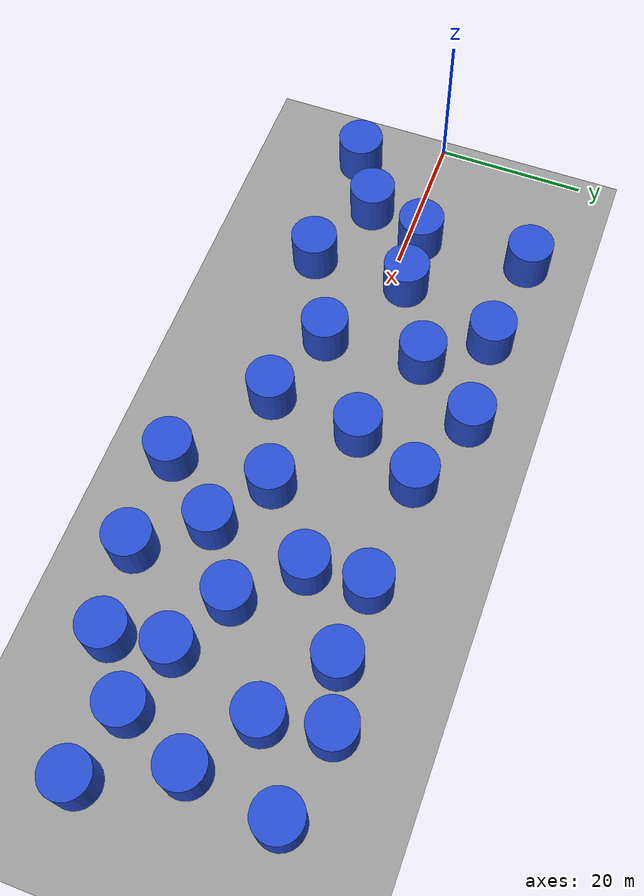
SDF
<sdf version="1.7">
 <world name="default">
  <plugin name="disable_physics" filename="libdisable_physics.so"/>
  <plugin name="gazebo_ros_state" filename="libgazebo_ros_state.so">
   <ros>
    <namespace>/plug</namespace>
    <argument>model_states:=model_states_plug</argument>
    <argument>link_states:=link_states_plug</argument>
   </ros>
   <update_rate>100.0</update_rate>
  </plugin>
  <light name="sun" type="directional">
   <pose>0 0 10 0 -0 0</pose>
   <diffuse>0.8 0.8 0.8 1</diffuse>
   <specular>0.2 0.2 0.2 1</specular>
   <attenuation>
    <range>1000</range>
    <constant>0.9</constant>
    <linear>0.01</linear>
    <quadratic>0.001</quadratic>
   </attenuation>
   <direction>-0.5 0.1 -0.9</direction>
   <spot><inner_angle>0</inner_angle><outer_angle>0</outer_angle><falloff>0</falloff></spot>
  </light>
  <gravity>0 0 -9.8</gravity>
  <magnetic_field>6e-06 2.3e-05 -4.2e-05</magnetic_field>
  <atmosphere type="adiabatic"/>
  <physics type="ode">
   <max_step_size>0.001</max_step_size>
   <real_time_factor>1</real_time_factor>
   <real_time_update_rate>1000</real_time_update_rate>
  </physics>
  <scene><ambient>0.4 0.4 0.4 1</ambient><background>0.7 0.7 0.7 1</background><shadows>1</shadows></scene>
  <audio><device>default</device></audio>
  <spherical_coordinates>
   <surface_model>EARTH_WGS84</surface_model>
   <latitude_deg>0</latitude_deg>
   <longitude_deg>0</longitude_deg>
   <elevation>0</elevation>
   <heading_deg>0</heading_deg>
  </spherical_coordinates>
  <model name="ground_plane_map">
   <static>1</static>
   <link name="link">
    <collision name="collision">
     <geometry><plane><normal>0 0 1</normal><size>110 50</size></plane></geometry>
     <surface>
      <contact><collide_without_contact>1</collide_without_contact></contact>
      <friction><ode><mu>100</mu><mu2>50</mu2></ode></friction>
     </surface>
    </collision>
    <visual name="visual">
     <cast_shadows>0</cast_shadows>
     <geometry><plane><normal>0 0 1</normal><size>110 50</size></plane></geometry>
     <material>
      <script><uri>file://media/materials/scripts/gazebo.material</uri><name>Gazebo/Grey</name></script>
     </material>
    </visual>
   </link>
   <pose>53 0 0 0 -0 0</pose>
  </model>
  <model name="0">
   <static>1</static>
   <link name="link">
    <inertial>
     <mass>2</mass>
     <inertia><ixx>10.5</ixx><ixy>0</ixy><ixz>0</ixz><iyy>10.5</iyy><iyz>0</iyz><izz>9</izz></inertia>
    </inertial>
    <collision name="collision">
     <geometry><cylinder><length>6</length><radius>3</radius></cylinder></geometry>
     <surface><contact><collide_without_contact>1</collide_without_contact></contact></surface>
    </collision>
    <visual name="visual">
     <geometry><cylinder><length>6</length><radius>3</radius></cylinder></geometry>
     <material>
      <script><uri>file://media/materials/scripts/gazebo.material</uri><name>Gazebo/Blue</name></script>
     </material>
    </visual>
    <gravity>0</gravity>
   </link>
   <pose>45.5337 -8.19683 3 0 -0 0</pose>
  </model>
  <model name="1">
   <static>1</static>
   <link name="link">
    <inertial>
     <mass>2</mass>
     <inertia><ixx>10.5</ixx><ixy>0</ixy><ixz>0</ixz><iyy>10.5</iyy><iyz>0</iyz><izz>9</izz></inertia>
    </inertial>
    <collision name="collision">
     <geometry><cylinder><length>6</length><radius>3</radius></cylinder></geometry>
     <surface><contact><collide_without_contact>1</collide_without_contact></contact></surface>
    </collision>
    <visual name="visual">
     <geometry><cylinder><length>6</length><radius>3</radius></cylinder></geometry>
     <material>
      <script><uri>file://media/materials/scripts/gazebo.material</uri><name>Gazebo/Blue</name></script>
     </material>
    </visual>
    <gravity>0</gravity>
   </link>
   <pose>79.6771 -6.68737 3 0 -0 0</pose>
  </model>
  <model name="2">
   <static>1</static>
   <link name="link">
    <inertial>
     <mass>2</mass>
     <inertia><ixx>10.5</ixx><ixy>0</ixy><ixz>0</ixz><iyy>10.5</iyy><iyz>0</iyz><izz>9</izz></inertia>
    </inertial>
    <collision name="collision">
     <geometry><cylinder><length>6</length><radius>3</radius></cylinder></geometry>
     <surface><contact><collide_without_contact>1</collide_without_contact></contact></surface>
    </collision>
    <visual name="visual">
     <geometry><cylinder><length>6</length><radius>3</radius></cylinder></geometry>
     <material>
      <script><uri>file://media/materials/scripts/gazebo.material</uri><name>Gazebo/Blue</name></script>
     </material>
    </visual>
    <gravity>0</gravity>
   </link>
   <pose>91.3626 0.159353 3 0 -0 0</pose>
  </model>
  <model name="3">
   <static>1</static>
   <link name="link">
    <inertial>
     <mass>2</mass>
     <inertia><ixx>10.5</ixx><ixy>0</ixy><ixz>0</ixz><iyy>10.5</iyy><iyz>0</iyz><izz>9</izz></inertia>
    </inertial>
    <collision name="collision">
     <geometry><cylinder><length>6</length><radius>3</radius></cylinder></geometry>
     <surface><contact><collide_without_contact>1</collide_without_contact></contact></surface>
    </collision>
    <visual name="visual">
     <geometry><cylinder><length>6</length><radius>3</radius></cylinder></geometry>
     <material>
      <script><uri>file://media/materials/scripts/gazebo.material</uri><name>Gazebo/Blue</name></script>
     </material>
    </visual>
    <gravity>0</gravity>
   </link>
   <pose>64.1267 -8.48278 3 0 -0 0</pose>
  </model>
  <model name="4">
   <static>1</static>
   <link name="link">
    <inertial>
     <mass>2</mass>
     <inertia><ixx>10.5</ixx><ixy>0</ixy><ixz>0</ixz><iyy>10.5</iyy><iyz>0</iyz><izz>9</izz></inertia>
    </inertial>
    <collision name="collision">
     <geometry><cylinder><length>6</length><radius>3</radius></cylinder></geometry>
     <surface><contact><collide_without_contact>1</collide_without_contact></contact></surface>
    </collision>
    <visual name="visual">
     <geometry><cylinder><length>6</length><radius>3</radius></cylinder></geometry>
     <material>
      <script><uri>file://media/materials/scripts/gazebo.material</uri><name>Gazebo/Blue</name></script>
     </material>
    </visual>
    <gravity>0</gravity>
   </link>
   <pose>82.1604 13.6736 3 0 -0 0</pose>
  </model>
  <model name="5">
   <static>1</static>
   <link name="link">
    <inertial>
     <mass>2</mass>
     <inertia><ixx>10.5</ixx><ixy>0</ixy><ixz>0</ixz><iyy>10.5</iyy><iyz>0</iyz><izz>9</izz></inertia>
    </inertial>
    <collision name="collision">
     <geometry><cylinder><length>6</length><radius>3</radius></cylinder></geometry>
     <surface><contact><collide_without_contact>1</collide_without_contact></contact></surface>
    </collision>
    <visual name="visual">
     <geometry><cylinder><length>6</length><radius>3</radius></cylinder></geometry>
     <material>
      <script><uri>file://media/materials/scripts/gazebo.material</uri><name>Gazebo/Blue</name></script>
     </material>
    </visual>
    <gravity>0</gravity>
   </link>
   <pose>46.8122 3.77016 3 0 -0 0</pose>
  </model>
  <model name="6">
   <static>1</static>
   <link name="link">
    <inertial>
     <mass>2</mass>
     <inertia><ixx>10.5</ixx><ixy>0</ixy><ixz>0</ixz><iyy>10.5</iyy><iyz>0</iyz><izz>9</izz></inertia>
    </inertial>
    <collision name="collision">
     <geometry><cylinder><length>6</length><radius>3</radius></cylinder></geometry>
     <surface><contact><collide_without_contact>1</collide_without_contact></contact></surface>
    </collision>
    <visual name="visual">
     <geometry><cylinder><length>6</length><radius>3</radius></cylinder></geometry>
     <material>
      <script><uri>file://media/materials/scripts/gazebo.material</uri><name>Gazebo/Blue</name></script>
     </material>
    </visual>
    <gravity>0</gravity>
   </link>
   <pose>50.8389 12.4205 3 0 -0 0</pose>
  </model>
  <model name="7">
   <static>1</static>
   <link name="link">
    <inertial>
     <mass>2</mass>
     <inertia><ixx>10.5</ixx><ixy>0</ixy><ixz>0</ixz><iyy>10.5</iyy><iyz>0</iyz><izz>9</izz></inertia>
    </inertial>
    <collision name="collision">
     <geometry><cylinder><length>6</length><radius>3</radius></cylinder></geometry>
     <surface><contact><collide_without_contact>1</collide_without_contact></contact></surface>
    </collision>
    <visual name="visual">
     <geometry><cylinder><length>6</length><radius>3</radius></cylinder></geometry>
     <material>
      <script><uri>file://media/materials/scripts/gazebo.material</uri><name>Gazebo/Blue</name></script>
     </material>
    </visual>
    <gravity>0</gravity>
   </link>
   <pose>57.5777 -16.5226 3 0 -0 0</pose>
  </model>
  <model name="8">
   <static>1</static>
   <link name="link">
    <inertial>
     <mass>2</mass>
     <inertia><ixx>10.5</ixx><ixy>0</ixy><ixz>0</ixz><iyy>10.5</iyy><iyz>0</iyz><izz>9</izz></inertia>
    </inertial>
    <collision name="collision">
     <geometry><cylinder><length>6</length><radius>3</radius></cylinder></geometry>
     <surface><contact><collide_without_contact>1</collide_without_contact></contact></surface>
    </collision>
    <visual name="visual">
     <geometry><cylinder><length>6</length><radius>3</radius></cylinder></geometry>
     <material>
      <script><uri>file://media/materials/scripts/gazebo.material</uri><name>Gazebo/Blue</name></script>
     </material>
    </visual>
    <gravity>0</gravity>
   </link>
   <pose>83.5354 5.71721 3 0 -0 0</pose>
  </model>
  <model name="9">
   <static>1</static>
   <link name="link">
    <inertial>
     <mass>2</mass>
     <inertia><ixx>10.5</ixx><ixy>0</ixy><ixz>0</ixz><iyy>10.5</iyy><iyz>0</iyz><izz>9</izz></inertia>
    </inertial>
    <collision name="collision">
     <geometry><cylinder><length>6</length><radius>3</radius></cylinder></geometry>
     <surface><contact><collide_without_contact>1</collide_without_contact></contact></surface>
    </collision>
    <visual name="visual">
     <geometry><cylinder><length>6</length><radius>3</radius></cylinder></geometry>
     <material>
      <script><uri>file://media/materials/scripts/gazebo.material</uri><name>Gazebo/Blue</name></script>
     </material>
    </visual>
    <gravity>0</gravity>
   </link>
   <pose>87.5547 -8.70703 3 0 -0 0</pose>
  </model>
  <model name="10">
   <static>1</static>
   <link name="link">
    <inertial>
     <mass>2</mass>
     <inertia><ixx>10.5</ixx><ixy>0</ixy><ixz>0</ixz><iyy>10.5</iyy><iyz>0</iyz><izz>9</izz></inertia>
    </inertial>
    <collision name="collision">
     <geometry><cylinder><length>6</length><radius>3</radius></cylinder></geometry>
     <surface><contact><collide_without_contact>1</collide_without_contact></contact></surface>
    </collision>
    <visual name="visual">
     <geometry><cylinder><length>6</length><radius>3</radius></cylinder></geometry>
     <material>
      <script><uri>file://media/materials/scripts/gazebo.material</uri><name>Gazebo/Blue</name></script>
     </material>
    </visual>
    <gravity>0</gravity>
   </link>
   <pose>23.9603 2.29536 3 0 -0 0</pose>
  </model>
  <model name="11">
   <static>1</static>
   <link name="link">
    <inertial>
     <mass>2</mass>
     <inertia><ixx>10.5</ixx><ixy>0</ixy><ixz>0</ixz><iyy>10.5</iyy><iyz>0</iyz><izz>9</izz></inertia>
    </inertial>
    <collision name="collision">
     <geometry><cylinder><length>6</length><radius>3</radius></cylinder></geometry>
     <surface><contact><collide_without_contact>1</collide_without_contact></contact></surface>
    </collision>
    <visual name="visual">
     <geometry><cylinder><length>6</length><radius>3</radius></cylinder></geometry>
     <material>
      <script><uri>file://media/materials/scripts/gazebo.material</uri><name>Gazebo/Blue</name></script>
     </material>
    </visual>
    <gravity>0</gravity>
   </link>
   <pose>13.5619 -6.11814 3 0 -0 0</pose>
  </model>
  <model name="12">
   <static>1</static>
   <link name="link">
    <inertial>
     <mass>2</mass>
     <inertia><ixx>10.5</ixx><ixy>0</ixy><ixz>0</ixz><iyy>10.5</iyy><iyz>0</iyz><izz>9</izz></inertia>
    </inertial>
    <collision name="collision">
     <geometry><cylinder><length>6</length><radius>3</radius></cylinder></geometry>
     <surface><contact><collide_without_contact>1</collide_without_contact></contact></surface>
    </collision>
    <visual name="visual">
     <geometry><cylinder><length>6</length><radius>3</radius></cylinder></geometry>
     <material>
      <script><uri>file://media/materials/scripts/gazebo.material</uri><name>Gazebo/Blue</name></script>
     </material>
    </visual>
    <gravity>0</gravity>
   </link>
   <pose>16.2514 1.74309 3 0 -0 0</pose>
  </model>
  <model name="13">
   <static>1</static>
   <link name="link">
    <inertial>
     <mass>2</mass>
     <inertia><ixx>10.5</ixx><ixy>0</ixy><ixz>0</ixz><iyy>10.5</iyy><iyz>0</iyz><izz>9</izz></inertia>
    </inertial>
    <collision name="collision">
     <geometry><cylinder><length>6</length><radius>3</radius></cylinder></geometry>
     <surface><contact><collide_without_contact>1</collide_without_contact></contact></surface>
    </collision>
    <visual name="visual">
     <geometry><cylinder><length>6</length><radius>3</radius></cylinder></geometry>
     <material>
      <script><uri>file://media/materials/scripts/gazebo.material</uri><name>Gazebo/Blue</name></script>
     </material>
    </visual>
    <gravity>0</gravity>
   </link>
   <pose>23.8028 -10.6512 3 0 -0 0</pose>
  </model>
  <model name="14">
   <static>1</static>
   <link name="link">
    <inertial>
     <mass>2</mass>
     <inertia><ixx>10.5</ixx><ixy>0</ixy><ixz>0</ixz><iyy>10.5</iyy><iyz>0</iyz><izz>9</izz></inertia>
    </inertial>
    <collision name="collision">
     <geometry><cylinder><length>6</length><radius>3</radius></cylinder></geometry>
     <surface><contact><collide_without_contact>1</collide_without_contact></contact></surface>
    </collision>
    <visual name="visual">
     <geometry><cylinder><length>6</length><radius>3</radius></cylinder></geometry>
     <material>
      <script><uri>file://media/materials/scripts/gazebo.material</uri><name>Gazebo/Blue</name></script>
     </material>
    </visual>
    <gravity>0</gravity>
   </link>
   <pose>92.7978 11.6436 3 0 -0 0</pose>
  </model>
  <model name="15">
   <static>1</static>
   <link name="link">
    <inertial>
     <mass>2</mass>
     <inertia><ixx>10.5</ixx><ixy>0</ixy><ixz>0</ixz><iyy>10.5</iyy><iyz>0</iyz><izz>9</izz></inertia>
    </inertial>
    <collision name="collision">
     <geometry><cylinder><length>6</length><radius>3</radius></cylinder></geometry>
     <surface><contact><collide_without_contact>1</collide_without_contact></contact></surface>
    </collision>
    <visual name="visual">
     <geometry><cylinder><length>6</length><radius>3</radius></cylinder></geometry>
     <material>
      <script><uri>file://media/materials/scripts/gazebo.material</uri><name>Gazebo/Blue</name></script>
     </material>
    </visual>
    <gravity>0</gravity>
   </link>
   <pose>56.8164 -3.69593 3 0 -0 0</pose>
  </model>
  <model name="16">
   <static>1</static>
   <link name="link">
    <inertial>
     <mass>2</mass>
     <inertia><ixx>10.5</ixx><ixy>0</ixy><ixz>0</ixz><iyy>10.5</iyy><iyz>0</iyz><izz>9</izz></inertia>
    </inertial>
    <collision name="collision">
     <geometry><cylinder><length>6</length><radius>3</radius></cylinder></geometry>
     <surface><contact><collide_without_contact>1</collide_without_contact></contact></surface>
    </collision>
    <visual name="visual">
     <geometry><cylinder><length>6</length><radius>3</radius></cylinder></geometry>
     <material>
      <script><uri>file://media/materials/scripts/gazebo.material</uri><name>Gazebo/Blue</name></script>
     </material>
    </visual>
    <gravity>0</gravity>
   </link>
   <pose>80.5726 -14.1993 3 0 -0 0</pose>
  </model>
  <model name="17">
   <static>1</static>
   <link name="link">
    <inertial>
     <mass>2</mass>
     <inertia><ixx>10.5</ixx><ixy>0</ixy><ixz>0</ixz><iyy>10.5</iyy><iyz>0</iyz><izz>9</izz></inertia>
    </inertial>
    <collision name="collision">
     <geometry><cylinder><length>6</length><radius>3</radius></cylinder></geometry>
     <surface><contact><collide_without_contact>1</collide_without_contact></contact></surface>
    </collision>
    <visual name="visual">
     <geometry><cylinder><length>6</length><radius>3</radius></cylinder></geometry>
     <material>
      <script><uri>file://media/materials/scripts/gazebo.material</uri><name>Gazebo/Blue</name></script>
     </material>
    </visual>
    <gravity>0</gravity>
   </link>
   <pose>65.2339 11.7326 3 0 -0 0</pose>
  </model>
  <model name="18">
   <static>1</static>
   <link name="link">
    <inertial>
     <mass>2</mass>
     <inertia><ixx>10.5</ixx><ixy>0</ixy><ixz>0</ixz><iyy>10.5</iyy><iyz>0</iyz><izz>9</izz></inertia>
    </inertial>
    <collision name="collision">
     <geometry><cylinder><length>6</length><radius>3</radius></cylinder></geometry>
     <surface><contact><collide_without_contact>1</collide_without_contact></contact></surface>
    </collision>
    <visual name="visual">
     <geometry><cylinder><length>6</length><radius>3</radius></cylinder></geometry>
     <material>
      <script><uri>file://media/materials/scripts/gazebo.material</uri><name>Gazebo/Blue</name></script>
     </material>
    </visual>
    <gravity>0</gravity>
   </link>
   <pose>69.9754 -16.0923 3 0 -0 0</pose>
  </model>
  <model name="19">
   <static>1</static>
   <link name="link">
    <inertial>
     <mass>2</mass>
     <inertia><ixx>10.5</ixx><ixy>0</ixy><ixz>0</ixz><iyy>10.5</iyy><iyz>0</iyz><izz>9</izz></inertia>
    </inertial>
    <collision name="collision">
     <geometry><cylinder><length>6</length><radius>3</radius></cylinder></geometry>
     <surface><contact><collide_without_contact>1</collide_without_contact></contact></surface>
    </collision>
    <visual name="visual">
     <geometry><cylinder><length>6</length><radius>3</radius></cylinder></geometry>
     <material>
      <script><uri>file://media/materials/scripts/gazebo.material</uri><name>Gazebo/Blue</name></script>
     </material>
    </visual>
    <gravity>0</gravity>
   </link>
   <pose>40.7932 16.3376 3 0 -0 0</pose>
  </model>
  <model name="20">
   <static>1</static>
   <link name="link">
    <inertial>
     <mass>2</mass>
     <inertia><ixx>10.5</ixx><ixy>0</ixy><ixz>0</ixz><iyy>10.5</iyy><iyz>0</iyz><izz>9</izz></inertia>
    </inertial>
    <collision name="collision">
     <geometry><cylinder><length>6</length><radius>3</radius></cylinder></geometry>
     <surface><contact><collide_without_contact>1</collide_without_contact></contact></surface>
    </collision>
    <visual name="visual">
     <geometry><cylinder><length>6</length><radius>3</radius></cylinder></geometry>
     <material>
      <script><uri>file://media/materials/scripts/gazebo.material</uri><name>Gazebo/Blue</name></script>
     </material>
    </visual>
    <gravity>0</gravity>
   </link>
   <pose>96.3369 -10.711 3 0 -0 0</pose>
  </model>
  <model name="21">
   <static>1</static>
   <link name="link">
    <inertial>
     <mass>2</mass>
     <inertia><ixx>10.5</ixx><ixy>0</ixy><ixz>0</ixz><iyy>10.5</iyy><iyz>0</iyz><izz>9</izz></inertia>
    </inertial>
    <collision name="collision">
     <geometry><cylinder><length>6</length><radius>3</radius></cylinder></geometry>
     <surface><contact><collide_without_contact>1</collide_without_contact></contact></surface>
    </collision>
    <visual name="visual">
     <geometry><cylinder><length>6</length><radius>3</radius></cylinder></geometry>
     <material>
      <script><uri>file://media/materials/scripts/gazebo.material</uri><name>Gazebo/Blue</name></script>
     </material>
    </visual>
    <gravity>0</gravity>
   </link>
   <pose>15.4866 16.6 3 0 -0 0</pose>
  </model>
  <model name="22">
   <static>1</static>
   <link name="link">
    <inertial>
     <mass>2</mass>
     <inertia><ixx>10.5</ixx><ixy>0</ixy><ixz>0</ixz><iyy>10.5</iyy><iyz>0</iyz><izz>9</izz></inertia>
    </inertial>
    <collision name="collision">
     <geometry><cylinder><length>6</length><radius>3</radius></cylinder></geometry>
     <surface><contact><collide_without_contact>1</collide_without_contact></contact></surface>
    </collision>
    <visual name="visual">
     <geometry><cylinder><length>6</length><radius>3</radius></cylinder></geometry>
     <material>
      <script><uri>file://media/materials/scripts/gazebo.material</uri><name>Gazebo/Blue</name></script>
     </material>
    </visual>
    <gravity>0</gravity>
   </link>
   <pose>74.7702 11.5031 3 0 -0 0</pose>
  </model>
  <model name="23">
   <static>1</static>
   <link name="link">
    <inertial>
     <mass>2</mass>
     <inertia><ixx>10.5</ixx><ixy>0</ixy><ixz>0</ixz><iyy>10.5</iyy><iyz>0</iyz><izz>9</izz></inertia>
    </inertial>
    <collision name="collision">
     <geometry><cylinder><length>6</length><radius>3</radius></cylinder></geometry>
     <surface><contact><collide_without_contact>1</collide_without_contact></contact></surface>
    </collision>
    <visual name="visual">
     <geometry><cylinder><length>6</length><radius>3</radius></cylinder></geometry>
     <material>
      <script><uri>file://media/materials/scripts/gazebo.material</uri><name>Gazebo/Blue</name></script>
     </material>
    </visual>
    <gravity>0</gravity>
   </link>
   <pose>35.2759 -4.85684 3 0 -0 0</pose>
  </model>
  <model name="24">
   <static>1</static>
   <link name="link">
    <inertial>
     <mass>2</mass>
     <inertia><ixx>10.5</ixx><ixy>0</ixy><ixz>0</ixz><iyy>10.5</iyy><iyz>0</iyz><izz>9</izz></inertia>
    </inertial>
    <collision name="collision">
     <geometry><cylinder><length>6</length><radius>3</radius></cylinder></geometry>
     <surface><contact><collide_without_contact>1</collide_without_contact></contact></surface>
    </collision>
    <visual name="visual">
     <geometry><cylinder><length>6</length><radius>3</radius></cylinder></geometry>
     <material>
      <script><uri>file://media/materials/scripts/gazebo.material</uri><name>Gazebo/Blue</name></script>
     </material>
    </visual>
    <gravity>0</gravity>
   </link>
   <pose>28.5723 15.4064 3 0 -0 0</pose>
  </model>
  <model name="25">
   <static>1</static>
   <link name="link">
    <inertial>
     <mass>2</mass>
     <inertia><ixx>10.5</ixx><ixy>0</ixy><ixz>0</ixz><iyy>10.5</iyy><iyz>0</iyz><izz>9</izz></inertia>
    </inertial>
    <collision name="collision">
     <geometry><cylinder><length>6</length><radius>3</radius></cylinder></geometry>
     <surface><contact><collide_without_contact>1</collide_without_contact></contact></surface>
    </collision>
    <visual name="visual">
     <geometry><cylinder><length>6</length><radius>3</radius></cylinder></geometry>
     <material>
      <script><uri>file://media/materials/scripts/gazebo.material</uri><name>Gazebo/Blue</name></script>
     </material>
    </visual>
    <gravity>0</gravity>
   </link>
   <pose>65.5723 4.11661 3 0 -0 0</pose>
  </model>
  <model name="26">
   <static>1</static>
   <link name="link">
    <inertial>
     <mass>2</mass>
     <inertia><ixx>10.5</ixx><ixy>0</ixy><ixz>0</ixz><iyy>10.5</iyy><iyz>0</iyz><izz>9</izz></inertia>
    </inertial>
    <collision name="collision">
     <geometry><cylinder><length>6</length><radius>3</radius></cylinder></geometry>
     <surface><contact><collide_without_contact>1</collide_without_contact></contact></surface>
    </collision>
    <visual name="visual">
     <geometry><cylinder><length>6</length><radius>3</radius></cylinder></geometry>
     <material>
      <script><uri>file://media/materials/scripts/gazebo.material</uri><name>Gazebo/Blue</name></script>
     </material>
    </visual>
    <gravity>0</gravity>
   </link>
   <pose>6.14328 -10.4615 3 0 -0 0</pose>
  </model>
  <model name="27">
   <static>1</static>
   <link name="link">
    <inertial>
     <mass>2</mass>
     <inertia><ixx>10.5</ixx><ixy>0</ixy><ixz>0</ixz><iyy>10.5</iyy><iyz>0</iyz><izz>9</izz></inertia>
    </inertial>
    <collision name="collision">
     <geometry><cylinder><length>6</length><radius>3</radius></cylinder></geometry>
     <surface><contact><collide_without_contact>1</collide_without_contact></contact></surface>
    </collision>
    <visual name="visual">
     <geometry><cylinder><length>6</length><radius>3</radius></cylinder></geometry>
     <material>
      <script><uri>file://media/materials/scripts/gazebo.material</uri><name>Gazebo/Blue</name></script>
     </material>
    </visual>
    <gravity>0</gravity>
   </link>
   <pose>71.972 -2.7803 3 0 -0 0</pose>
  </model>
  <model name="28">
   <static>1</static>
   <link name="link">
    <inertial>
     <mass>2</mass>
     <inertia><ixx>10.5</ixx><ixy>0</ixy><ixz>0</ixz><iyy>10.5</iyy><iyz>0</iyz><izz>9</izz></inertia>
    </inertial>
    <collision name="collision">
     <geometry><cylinder><length>6</length><radius>3</radius></cylinder></geometry>
     <surface><contact><collide_without_contact>1</collide_without_contact></contact></surface>
    </collision>
    <visual name="visual">
     <geometry><cylinder><length>6</length><radius>3</radius></cylinder></geometry>
     <material>
      <script><uri>file://media/materials/scripts/gazebo.material</uri><name>Gazebo/Blue</name></script>
     </material>
    </visual>
    <gravity>0</gravity>
   </link>
   <pose>34.3789 7.98153 3 0 -0 0</pose>
  </model>
 </world>
</sdf>
